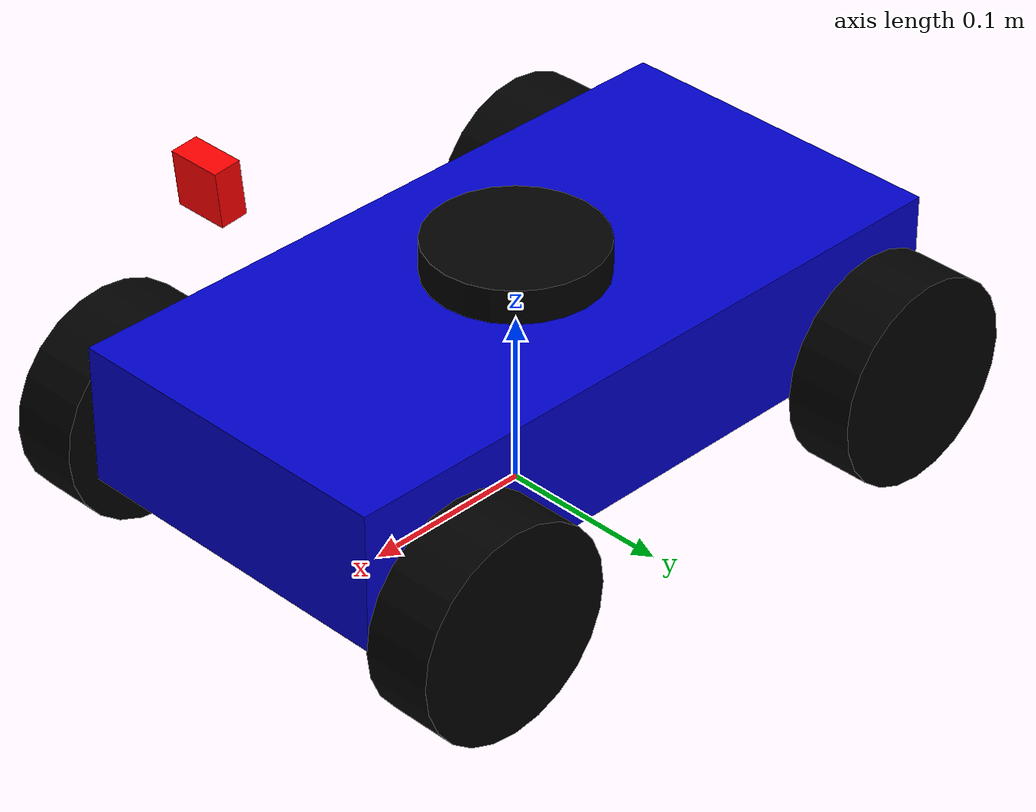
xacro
<?xml version="1.0"?>
<robot xmlns:xacro="http://www.ros.org/wiki/xacro" name="ackermann_car">

  <!-- Path to controller config, passed from launch file -->
  <xacro:arg name="controller_config_path" default=""/>

  <!-- ================= TÍNH TOÁN HÌNH HỌC (ĐÃ HIỆU CHUẨN) ================= -->
  <xacro:property name="chassis_length" value="0.4"/>
  <xacro:property name="chassis_width" value="0.2"/>
  <xacro:property name="chassis_height" value="0.08"/>
  <xacro:property name="wheel_radius" value="0.06"/>
  <xacro:property name="wheel_width" value="0.04"/>
  <xacro:property name="wheelbase" value="0.3"/>
  <xacro:property name="track" value="0.26"/>

  <!-- Gốc tọa độ ảo của Robot nằm sát mặt đất -->
  <link name="base_link"/>

  <!-- Thân xe (Chassis) - Nâng trọng tâm lên để tạo khoảng sáng gầm -->
  <link name="chassis_link">
    <visual>
      <geometry><box size="${chassis_length} ${chassis_width} ${chassis_height}"/></geometry>
      <material name="blue"><color rgba="0 0 0.8 1"/></material>
    </visual>
    <collision>
      <geometry><box size="${chassis_length} ${chassis_width} ${chassis_height}"/></geometry>
    </collision>
    <inertial>
      <mass value="10.0"/>
      <inertia ixx="0.04" ixy="0.0" ixz="0.0" iyy="0.14" iyz="0.0" izz="0.16"/>
    </inertial>
  </link>

  <!-- Đặt đáy thân xe cách mặt đất 0.05m (Khoảng sáng gầm) -->
  <joint name="base_to_chassis" type="fixed">
    <parent link="base_link"/>
    <child link="chassis_link"/>
    <origin xyz="0 0 ${chassis_height/2 + 0.05}" rpy="0 0 0"/>
  </joint>

  <!-- KHỚP NỐI (JOINT) - Gắn LiDAR vào chính giữa mặt trên thân xe -->
  <joint name="laser_joint" type="fixed">
    <parent link="chassis_link"/>
    <child link="laser_frame"/>
    <origin xyz="0 0 ${chassis_height / 2}" rpy="0 0 0"/>
  </joint>

  <link name="laser_frame">
    <visual>
      <geometry>
        <cylinder radius="0.05" length="0.04"/>
      </geometry>
      <material name="black">
        <color rgba="0 0 0 1"/>
      </material>
    </visual>
    <collision>
      <geometry>
        <cylinder radius="0.05" length="0.04"/>
      </geometry>
    </collision>
    <inertial>
      <mass value="0.1"/>
      <inertia ixx="0.0001" ixy="0.0" ixz="0.0" iyy="0.0001" iyz="0.0" izz="0.0001"/>
    </inertial>
  </link>
  <!-- Camera joint: elevated to 0.18m with wider horizon pitch 0.10 rad for long-range NMPC lookahead -->
  <joint name="camera_joint" type="fixed">
    <parent link="chassis_link"/>
    <child link="camera_link"/>
    <origin xyz="${chassis_length/2} 0 0.18" rpy="0 0.10 0"/>
  </joint>

  <link name="camera_link">
    <visual>
      <geometry>
        <box size="0.015 0.03 0.03"/>
      </geometry>
      <material name="red">
        <color rgba="1 0 0 1"/>
      </material>
    </visual>
    <collision>
      <geometry>
        <box size="0.015 0.03 0.03"/>
      </geometry>
    </collision>
    <inertial>
      <mass value="0.05"/>
      <inertia ixx="0.00001" ixy="0" ixz="0" iyy="0.00001" iyz="0" izz="0.00001"/>
    </inertial>
  </link>

  <!-- optical link -->
  <joint name="camera_optical_joint" type="fixed">
    <parent link="camera_link"/>
    <child link="camera_link_optical"/>
    <origin xyz="0.2 0 0.1" rpy="0 0 0"/>
  </joint>

  <link name="camera_link_optical"></link>

  <!-- ================= CẤU HÌNH VẬT LÝ IMU ================= -->
  <joint name="imu_joint" type="fixed">
    <parent link="chassis_link"/>
    <child link="imu_link"/>
    <origin xyz="0 0 0" rpy="0 0 0"/>
  </joint>

  <link name="imu_link">
    <visual>
      <geometry>
        <box size="0.01 0.01 0.01"/>
      </geometry>
      <material name="orange">
        <color rgba="1.0 0.5 0.0 1"/>
      </material>
    </visual>
    <collision>
      <geometry>
        <box size="0.01 0.01 0.01"/>
      </geometry>
    </collision>
    <inertial>
      <mass value="0.001"/>
      <inertia ixx="0.000001" ixy="0" ixz="0" iyy="0.000001" iyz="0" izz="0.000001"/>
    </inertial>
  </link>
  <!-- ================= CẦU SAU (VI SAI CHỦ ĐỘNG) ================= -->
  <!-- Bánh sau TRÁI -->
  <link name="left_rear_wheel">
    <visual>
      <origin xyz="0 0 0" rpy="0 0 0"/>
      <geometry><cylinder radius="${wheel_radius}" length="${wheel_width}"/></geometry>
      <material name="black"><color rgba="0 0 0 1"/></material>
    </visual>
    <collision>
      <origin xyz="0 0 0" rpy="0 0 0"/>
      <geometry><cylinder radius="${wheel_radius}" length="${wheel_width}"/></geometry>
    </collision>
    <inertial><mass value="0.3"/><inertia ixx="0.00031" ixy="0" ixz="0" iyy="0.00031" iyz="0" izz="0.00054"/></inertial>
  </link>
  <joint name="left_rear_wheel_joint" type="continuous">
    <parent link="chassis_link"/>
    <child link="left_rear_wheel"/>
    <origin xyz="-${wheelbase/2} ${track/2} -0.03" rpy="-${pi/2} 0 0"/>
    <axis xyz="0 0 1"/>
  </joint>
  <!-- Bánh sau PHẢI -->
  <link name="right_rear_wheel">
    <visual>
      <origin xyz="0 0 0" rpy="0 0 0"/>
      <geometry><cylinder radius="${wheel_radius}" length="${wheel_width}"/></geometry>
      <material name="black"><color rgba="0 0 0 1"/></material>
    </visual>
    <collision>
      <origin xyz="0 0 0" rpy="0 0 0"/>
      <geometry><cylinder radius="${wheel_radius}" length="${wheel_width}"/></geometry>
    </collision>
    <inertial><mass value="0.3"/><inertia ixx="0.00031" ixy="0" ixz="0" iyy="0.00031" iyz="0" izz="0.00054"/></inertial>
  </link>
  <joint name="right_rear_wheel_joint" type="continuous">
    <parent link="chassis_link"/>
    <child link="right_rear_wheel"/>
    <origin xyz="-${wheelbase/2} -${track/2} -0.03" rpy="-${pi/2} 0 0"/>
    <axis xyz="0 0 1"/>
  </joint>
 <!-- ================= CẦU TRƯỚC (HỆ THỐNG LÁI ACKERMANN) ================= -->
  <!-- HỆ THỐNG BÊN TRÁI -->
  <link name="left_steering_knuckle">
    <inertial><mass value="0.05"/><inertia ixx="0.00001" ixy="0" ixz="0" iyy="0.00001" iyz="0" izz="0.00001"/></inertial>
  </link>
  <joint name="left_steering_joint" type="revolute">
    <parent link="chassis_link"/>
    <child link="left_steering_knuckle"/>
    <origin xyz="${wheelbase/2} ${track/2} -0.03" rpy="0 0 0"/>
    <axis xyz="0 0 1"/>
    <limit lower="-0.55" upper="0.55" effort="50.0" velocity="10.0"/>
    <dynamics damping="0.01" friction="0.01"/>
  </joint>

  <link name="left_front_wheel">
    <visual><geometry><cylinder radius="${wheel_radius}" length="${wheel_width}"/></geometry><material name="black"><color rgba="0 0 0 1"/></material></visual>
    <collision><geometry><cylinder radius="${wheel_radius}" length="${wheel_width}"/></geometry></collision>
    <inertial><mass value="0.3"/><inertia ixx="0.00031" ixy="0" ixz="0" iyy="0.00031" iyz="0" izz="0.00054"/></inertial>
  </link>
  <joint name="left_front_wheel_joint" type="continuous">
    <parent link="left_steering_knuckle"/>
    <child link="left_front_wheel"/>
    <origin xyz="0 0 0" rpy="-${pi/2} 0 0"/>
    <axis xyz="0 0 1"/>
    <limit effort="20.0" velocity="50.0"/>
    <dynamics damping="0.01" friction="0.01"/>
  </joint>
  <!-- HỆ THỐNG BÊN PHẢI  -->
  <link name="right_steering_knuckle">
    <inertial><mass value="0.05"/><inertia ixx="0.00001" ixy="0" ixz="0" iyy="0.00001" iyz="0" izz="0.00001"/></inertial>
  </link>
  <joint name="right_steering_joint" type="revolute">
    <parent link="chassis_link"/>
    <child link="right_steering_knuckle"/>
    <origin xyz="${wheelbase/2} -${track/2} -0.03" rpy="0 0 0"/>
    <axis xyz="0 0 1"/>
    <limit lower="-0.55" upper="0.55" effort="50.0" velocity="10.0"/>
    <dynamics damping="0.01" friction="0.01"/>
  </joint>

  <link name="right_front_wheel">
    <visual><geometry><cylinder radius="${wheel_radius}" length="${wheel_width}"/></geometry><material name="black"><color rgba="0 0 0 1"/></material></visual>
    <collision><geometry><cylinder radius="${wheel_radius}" length="${wheel_width}"/></geometry></collision>
    <inertial><mass value="0.3"/><inertia ixx="0.00031" ixy="0" ixz="0" iyy="0.00031" iyz="0" izz="0.00054"/></inertial>
  </link>
  <joint name="right_front_wheel_joint" type="continuous">
    <parent link="right_steering_knuckle"/>
    <child link="right_front_wheel"/>
    <origin xyz="0 0 0" rpy="-${pi/2} 0 0"/>
    <axis xyz="0 0 1"/>
    <limit effort="20.0" velocity="50.0"/>
    <dynamics damping="0.01" friction="0.01"/>
  </joint>

  <!-- ĐỘ BÁM ĐƯỜNG CHO BÁNH XE TRONG GAZEBO -->
  <!-- Ma sát mặt đường cho Bánh sau  (truyền lực) -->
  <gazebo reference="left_rear_wheel">
    <mu1>100.0</mu1>
    <mu2>100.0</mu2>
    <fdir1>1 0 0</fdir1>
    <kp>1000000.0</kp>
    <kd>10.0</kd>
    <minDepth>0.001</minDepth>
    <maxVel>0.01</maxVel>
  </gazebo>
  <gazebo reference="right_rear_wheel">
    <mu1>100.0</mu1>
    <mu2>100.0</mu2>
    <fdir1>1 0 0</fdir1>
    <kp>1000000.0</kp>
    <kd>10.0</kd>
    <minDepth>0.001</minDepth>
    <maxVel>0.01</maxVel>
  </gazebo>
  <!-- Ma sát mặt đường cho Bánh trước (Bánh dẫn hướng) -->
  <gazebo reference="left_front_wheel">
    <mu1>100.0</mu1>
    <mu2>100.0</mu2>
    <fdir1>1 0 0</fdir1>
    <kp>1000000.0</kp>
    <kd>10.0</kd>
    <minDepth>0.001</minDepth>
    <maxVel>0.01</maxVel>
  </gazebo>

  <gazebo reference="right_front_wheel">
    <mu1>100.0</mu1>
    <mu2>100.0</mu2>
    <fdir1>1 0 0</fdir1>
    <kp>1000000.0</kp>
    <kd>10.0</kd>
    <minDepth>0.001</minDepth>
    <maxVel>0.01</maxVel>
  </gazebo>
  <!-- CONFIG ROS2 CONTROL (ĐÃ HIỆU CHỈNH ĐỦ ĐẦU RA CHO 4 BÁNH VÀ 2 CỔ LÁI) -->
  <ros2_control name="GazeboSystem" type="system">
    <hardware><plugin>gazebo_ros2_control/GazeboSystem</plugin></hardware>
    <joint name="left_rear_wheel_joint"><command_interface name="velocity"/><state_interface name="position"/><state_interface name="velocity"/></joint>
    <joint name="right_rear_wheel_joint"><command_interface name="velocity"/><state_interface name="position"/><state_interface name="velocity"/></joint>
    <joint name="left_front_wheel_joint"><command_interface name="velocity"/><state_interface name="position"/><state_interface name="velocity"/></joint>
    <joint name="right_front_wheel_joint"><command_interface name="velocity"/><state_interface name="position"/><state_interface name="velocity"/></joint>
    <joint name="left_steering_joint"><command_interface name="position"/><state_interface name="position"/><state_interface name="velocity"/></joint>
    <joint name="right_steering_joint"><command_interface name="position"/><state_interface name="position"/><state_interface name="velocity"/></joint>
  </ros2_control>
  <!-- ================= PLUGIN LIDAR CHO GAZEBO ================= -->
  <gazebo reference="laser_frame">
    <material>Gazebo/Black</material>
    <sensor name="laser" type="ray">
      <pose>0 0 0 0 0 0</pose>
      <visualize>true</visualize>
      <update_rate>10</update_rate>
      <ray>
        <scan>
          <horizontal>
            <samples>360</samples>
            <resolution>1</resolution>
            <min_angle>-3.14159</min_angle>
            <max_angle>3.14159</max_angle>
          </horizontal>
        </scan>
        <range>
          <min>0.3</min>
          <max>12.0</max>
          <resolution>0.01</resolution>
        </range>
      </ray>
      <plugin name="laser_controller" filename="libgazebo_ros_ray_sensor.so">
        <ros><argument>~/out:=scan</argument></ros>
        <output_type>sensor_msgs/LaserScan</output_type>
        <frame_name>laser_frame</frame_name>
      </plugin>
    </sensor>
  </gazebo>
  <!-- ================= PLUGIN CONTROL TỔNG CHO GAZEBO ================= -->
  <gazebo>
    <plugin name="gazebo_ros2_control" filename="libgazebo_ros2_control.so">
      <parameters>$(arg controller_config_path)</parameters>
      <robot_param>robot_description</robot_param>
      <robot_param_node>robot_state_publisher</robot_param_node>
    </plugin>
  </gazebo>

  <!-- ================= PLUGIN CAMERA CHO GAZEBO ================= -->
  <gazebo reference="camera_link">
    <material>Gazebo/Red</material>
    <sensor name="camera" type="camera">
      <pose>0 0 0 0 0 0</pose>
      <visualize>true</visualize>
      <update_rate>30</update_rate>
      <camera>
        <horizontal_fov>1.25</horizontal_fov>
        <image>
          <width>640</width>
          <height>480</height>
          <format>R8G8B8</format>
        </image>
        <clip><near>0.05</near><far>25.0</far></clip>
      </camera>
      <plugin name="camera_controller" filename="libgazebo_ros_camera.so">
        <frame_name>camera_link_optical</frame_name>
      </plugin>
    </sensor>
  </gazebo>
 <!-- ================= PLUGIN IMU CHO GAZEBO ================= -->
  <gazebo reference="imu_link">
    <gravity>true</gravity>
    <sensor name="imu_sensor" type="imu">
      <always_on>true</always_on>
      <update_rate>100</update_rate>
      <visualize>true</visualize>
      <topic>__default_topic__</topic>
      <plugin name="imu_plugin" filename="libgazebo_ros_imu_sensor.so">
        <ros><remapping>~/out:=imu/data</remapping></ros>
        <frame_name>imu_link</frame_name>
      </plugin>
    </sensor>
  </gazebo>
</robot>
